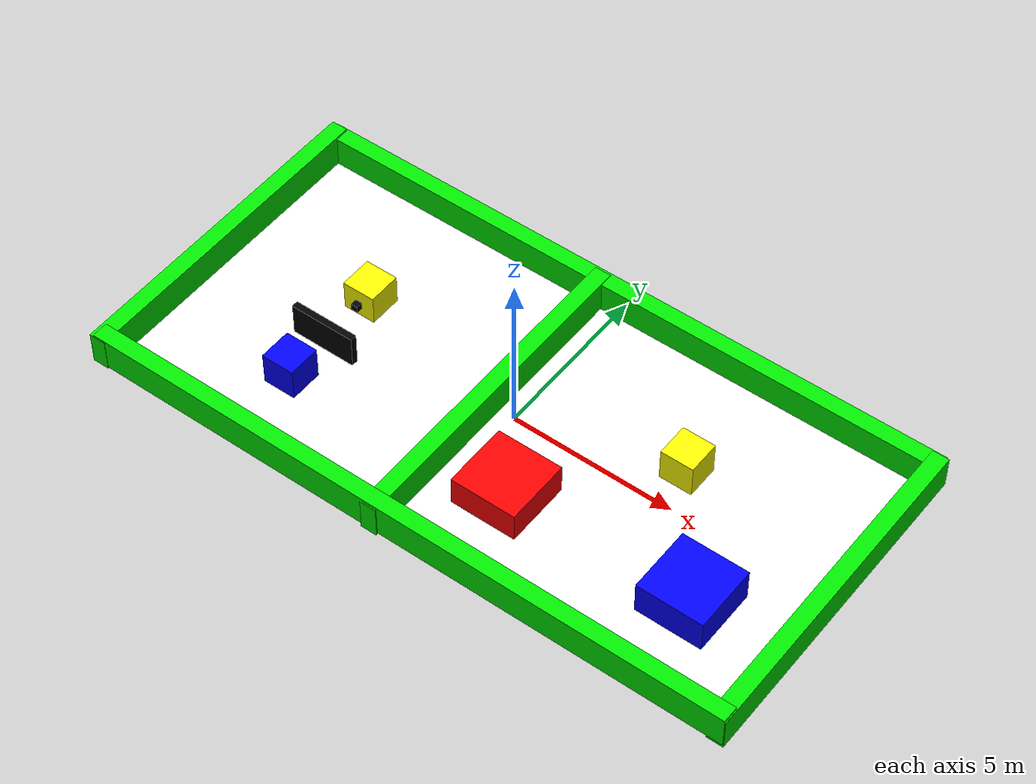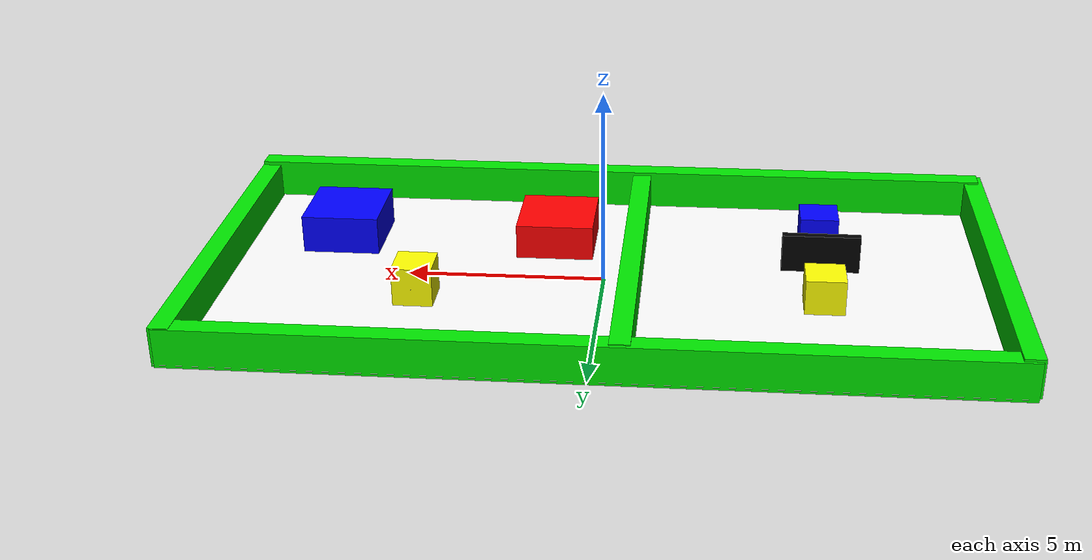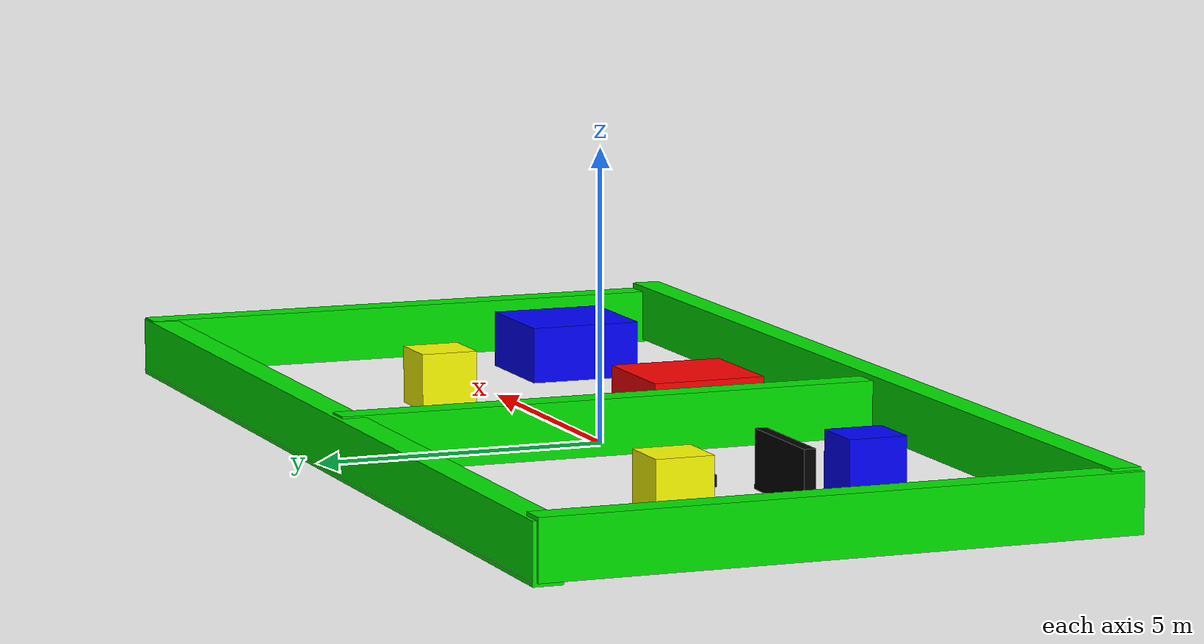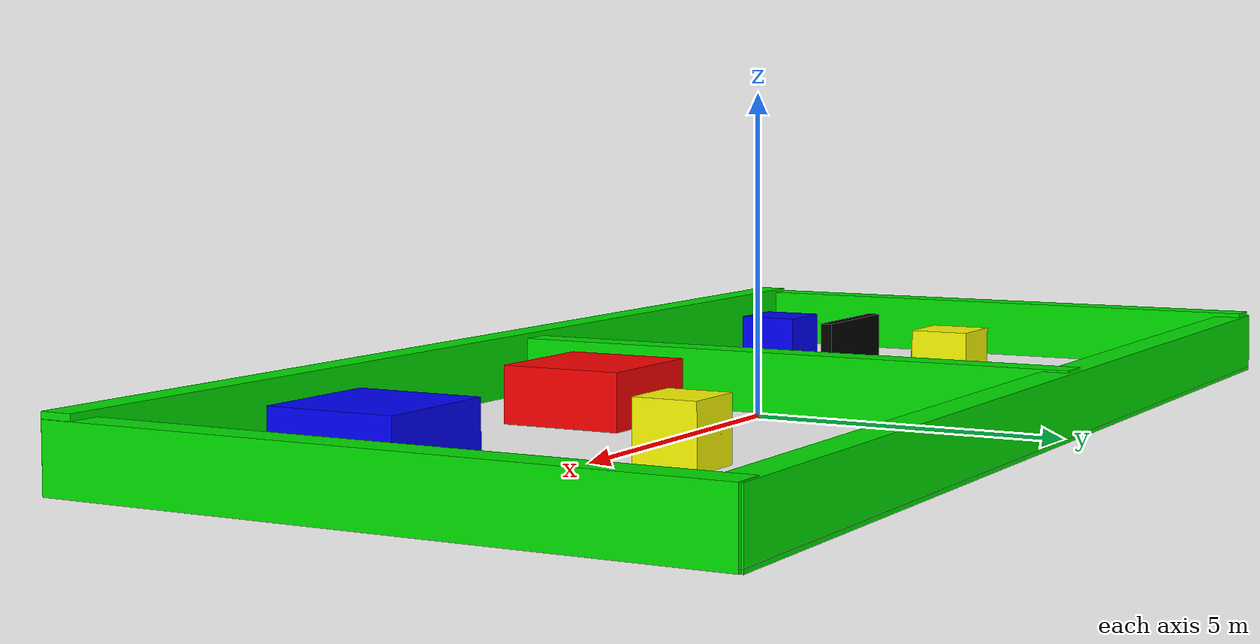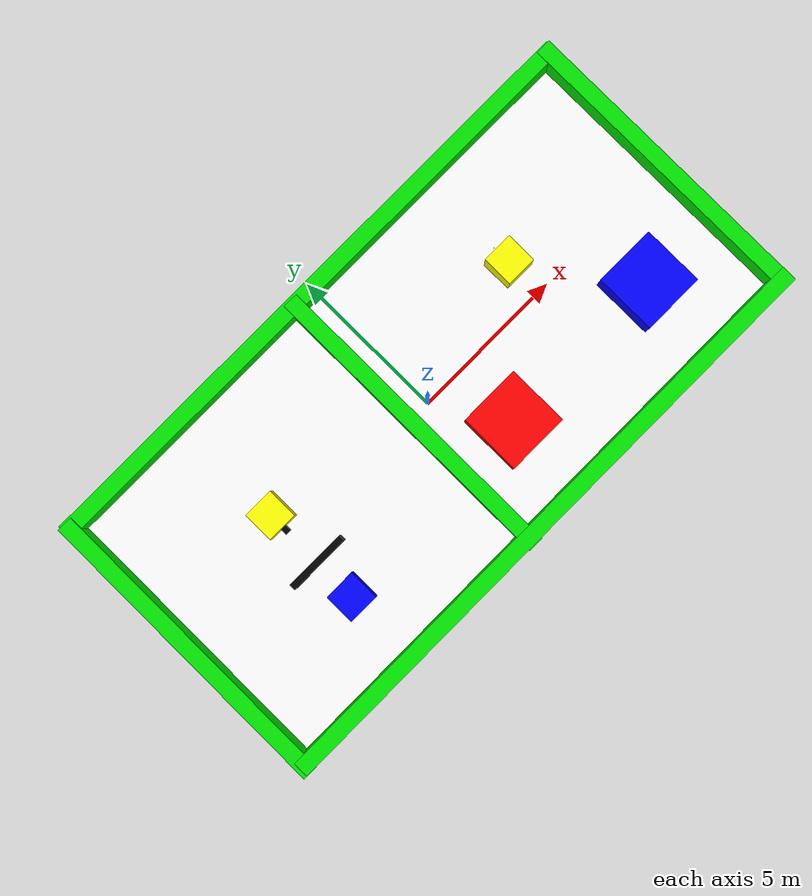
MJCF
<mujoco>
  <worldbody>
    <light diffuse=".5 .5 .5" pos="0 0 3" dir="0 0 -1" />
    <body pos="0 0 0" name="">
      <geom type="plane" size="10 5 1.110223E-16" euler="0 0 0" rgba="255 255 255 1" name="" />
    </body>
    <body pos="0.01862761 -4.816084 0.5215917" name="">
      <geom type="box" size="10 0.25 0.5" euler="0 0 0" rgba="0 .9 0 1" name="border1_geom" />
    </body>
    <body pos="-0.02937651 4.738263 0.4082346" name="">
      <geom type="box" size="10 0.25 0.5" euler="0 0 0" rgba="0 .9 0 1" name="border2_geom" />
    </body>
    <body pos="9.789262 -0.04495001 0.4216571" name="">
      <geom type="box" size="0.25 5 0.5" euler="0 0 0" rgba="0 .9 0 1" name="border3_geom" />
    </body>
    <body pos="-9.848948 -0.07438982 0.4721622" name="">
      <geom type="box" size="0.25 5 0.5" euler="0 0 0" rgba="0 .9 0 1" name="border4_geom" />
    </body>
    <body pos="-0.7310539 -0.09776664 0.4394875" name="">
      <geom type="box" size="0.25 5 0.5" euler="0 0 0" rgba="0 .9 0 1" name="border5_geom" />
    </body>
    <body pos="7.02852 -2.071592 0.4710507" name="choice_1">
      <geom type="box" size="1 1 0.5" euler="0 0 0" rgba="0 0 255 1" name="choice_1_geom" />
    </body>
    <body pos="1.373154 -2.135309 0.3841939" name="choice_2">
      <geom type="box" size="1 1 0.5" euler="0 0 0" rgba="255 0 0 1" name="choice_2_geom" />
    </body>
    <body pos="-5.522553 -1.0 0.4737153" name="obstacle">
      <geom type="box" size="1 0.1 0.5" euler="0 0 0" rgba="0 0 0 1" name="obstacle_geom" />
    </body>
    <body pos="-5.522553 -2.403258 0.4737153" name="reference">
      <geom type="box" size="0.5 0.5 0.5" euler="0 0 0" rgba="0 0 255 1" name="reference_geom" />
    </body>
    <body pos="-5.522553 0.9194446 0.3838582" euler="180 0 0" name="sender">
      <geom type="box" size="0.5 0.5 0.5" euler="0 0 0" rgba="255 255 0 1" name="sender_geom" />
      <joint type="free" name="sender_freeJoint" />
      <site name="sender_site" pos="0 0.6 0" euler="90 180 0" type="box" rgba="0 0 0 1" size="0.1 0.1 0.1"/>
      <camera name="sender_camera" pos="0 -0.6 0" euler="90 0 0"/>
    </body>
    <body pos="4.595446 1.222577 0.4743838" euler="180 0 0" name="receiver">
      <geom type="box" size="0.5 0.5 0.5" euler="0 0 0" rgba="255 255 0 1" name="receiver_geom" />
      <joint type="free" name="receiver_freeJoint" />
      <site name="receiver_site" pos="0 -0.6 0" euler="180 0 0"/>
      <camera name="receiver_camera" pos="0 -0.6 0" euler="90 0 0"/>
    </body>
  </worldbody>
  <sensor />
</mujoco>
